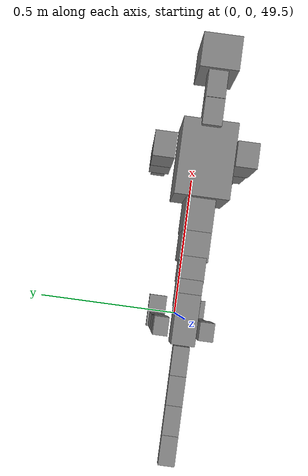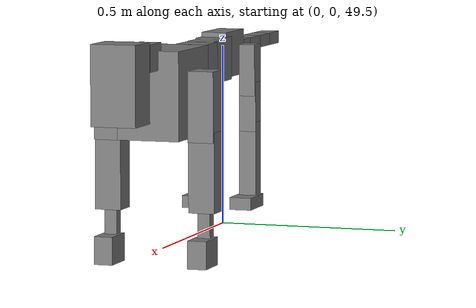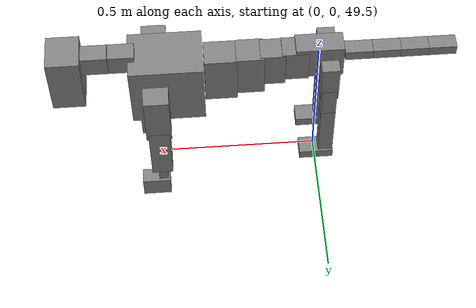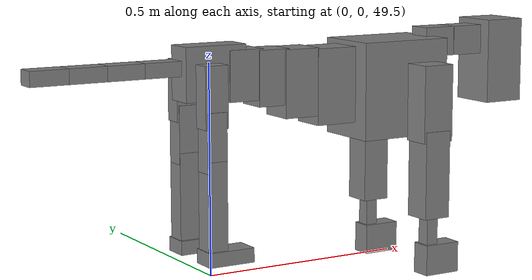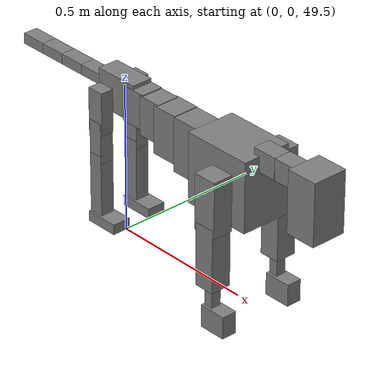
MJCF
<mujoco model="dog">

    <default>
        <joint armature="0.02" stiffness="1" damping="0.2" limited="true"/>
        <geom condim="3" friction="1 0.05 0.05" margin="0.01"/>
        <motor ctrllimited="true" ctrlrange="-1.0 1.0" forcelimited="true" gear="50"/>
    </default>

    <compiler inertiafromgeom="true" angle="radian"/>

    <option timestep="0.016" iterations="50" tolerance="1e-10" solver="Newton" jacobian="dense" cone="pyramidal"/>

    <size nconmax="20000" njmax="60000" nstack="5000000"/>
    <visual>
        <map force="0.1" zfar="30"/>
        <rgba haze="0.15 0.25 0.35 1"/>
        <quality shadowsize="2048"/>
        <global offwidth="800" offheight="800"/>
    </visual>

    <asset>
        <texture type="skybox" builtin="gradient" rgb1="0.3 0.5 0.7" rgb2="0 0 0" width="512" height="512"/>
        <texture name="texplane" type="2d" builtin="checker" rgb1=".2 .3 .4" rgb2=".1 0.15 0.2" width="512" height="512"
                 mark="cross" markrgb=".8 .8 .8"/>
        <texture name="texgeom" type="cube" builtin="flat" mark="cross" width="127" height="1278" rgb1="0.8 0.6 0.4"
                 rgb2="0.8 0.6 0.4" markrgb="1 1 1" random="0.01"/>

        <material name="matplane" reflectance="0.3" texture="texplane" texrepeat="1 1" texuniform="true"/>
        <material name="matgeom" texture="texgeom" texuniform="true" rgba="0.8 0.6 .4 1"/>
    </asset>

    <worldbody>
        <geom name="floor" pos="0 0 0" size="0 0 .25" type="plane" material="matplane" condim="3"/>

        <light directional="false" diffuse=".2 .2 .2" specular="0 0 0" pos="0 0 5" dir="0 0 -1" castshadow="false"/>
        <light mode="targetbodycom" target="torso" directional="false" diffuse=".8 .8 .8" specular="0.3 0.3 0.3"
               pos="0 0 4.0" dir="0 0 -1"/>

        <body name="root" pos="0 0 50">
            <freejoint name="root_1"/>
            <geom type="box" pos="0 0 -0.02" size="0.0774  0.0358  0.063" density="2030"/>

            <body name="spine1" pos="0.054 0 0">
                <joint name="spine1_y" axis="0 1 0" range="0 0.7" limited="true"/>
                <geom type="box" pos="0.02375 0 -0.03" size="0.04375  0.0375  0.05985" density="2030"/>

                <body name="spine2" pos="0.0612 0 0">
                    <joint name="spine2_y" axis="0 1 0" range="-0.15 0.15" limited="true"/>
                    <geom type="box" pos="0.03555  0  -0.04" size="0.04055  0.039  0.06615" density="2030"/>

                    <body name="spine3" pos="0.0730 0 0">
                        <joint name="spine3_y" axis="0 1 0" range="-0.15 0.15" limited="true"/>
                        <geom type="box" pos="0.03555  0  -0.057" size="0.04555  0.0445  0.081" density="2030"/>

                        <body name="spine4" pos="0.0780 0 0">
                            <joint name="spine4_y" axis="0 1 0" range="-0.15 0.15" limited="true"/>
                            <geom type="box" pos="0.05265  0  -0.07" size="0.05265  0.045  0.09135" density="2030"/>

                            <body name="torso" pos="0.1082 0 0">
                                <joint name="torso_y" axis="0 1 0" range="-0.15 0.15" limited="true"/>
                                <geom type="box" pos="0.11925  0  -0.085" size="0.11925  0.085  0.11745"
                                      density="2030"/>

                                <body name="neck1" pos="0.2160  0   0.0180">
                                    <joint name="neck1_y" axis="0 1 0" range="-1.2  -1" limited="true"/>
                                    <geom type="box" pos="0.0423  0  0" size="0.0423  0.03  0.036" density="2325"/>

                                    <body name="neck2" pos="0.0853  0  0">
                                        <joint name="neck2_y" axis="0 1 0" range="0.1  0" limited="true"/>
                                        <geom type="box" pos="0.0423  0  0" size="0.0423  0.03  0.036" density="2325"/>

                                        <body name="head" pos="0.0853  0  0">
                                            <joint name="head_y" axis="0 1 0" range="-0.3  -0.2" limited="true"/>
                                            <geom type="box" pos="0.0531  0  -0.055" size="0.0531  0.06  0.1044"
                                                  density="4030"/>

                                        </body>
                                    </body>
                                </body>

                                <body name="front_shoulder" pos="0.156  0   -0.0480">
                                    <joint name="front_shoulder_y" axis="0 1 0" range="-1 1.5" limited="true"/>
                                    <geom type="box" pos="0 0.13 -0.0666" size="0.0407  0.0348  0.0932" density="1158"/>
                                    <geom type="box" pos="0 -0.13 -0.0666" size="0.0407  0.0348  0.0932"
                                          density="1158"/>

                                    <body name="front_elbow" pos="0  0  -0.1331">
                                        <joint name="front_elbow_y" axis="0 1 0" range="-2 0" limited="true"/>
                                        <geom type="box" pos="0 0.13 -0.1064" size="0.0347  0.0355  0.1064"
                                              density="1081"/>
                                        <geom type="box" pos="0 -0.13 -0.1064" size="0.0347  0.0355  0.1064"
                                              density="1081"/>

                                        <body name="front_wrist" pos="0  0  -0.2127">
                                            <joint name="front_wrist_y" axis="0 1 0" range="-0.2 0" limited="true"/>
                                            <geom type="box" pos="0 0.13 -0.0413" size="0.0153  0.0170  0.0545"
                                                  density="1664"/>
                                            <geom type="box" pos="0 -0.13 -0.0413" size="0.0153  0.0170  0.0545"
                                                  density="1664"/>

                                            <body name="front_finger_end" pos="0  0  -0.0826">
                                                <joint name="front_finger_y" axis="0 1 0" range="-0.4 1"
                                                       limited="true"/>
                                                <geom type="box" pos="0.0256  0.13  -0.0223"
                                                      size="0.0469  0.0256  0.0373" density="1515"/>
                                                <geom type="box" pos="0.0256  -0.13  -0.0223"
                                                      size="0.0469  0.0256  0.0373" density="1515"/>

                                            </body>

                                        </body>
                                    </body>
                                </body>

                            </body>
                        </body>
                    </body>
                </body>
            </body>

            <body name="back_hip" pos="-0.03 0 -0.018">
                <joint name="back_hip_y" axis="0 1 0" range="-1.5 0.3" limited="true"/>
                <geom type="box" pos="0 0.07 -0.0491" size="0.0288  0.0226  0.0719" density="1154"/>
                <geom type="box" pos="0 -0.07 -0.0491" size="0.0288  0.0226  0.0719" density="1154"/>

                <body name="back_knee" pos="0  0  -0.0982">
                    <joint name="back_knee_y" axis="0 1 0" range="0 2.8" limited="true"/>
                    <geom type="box" pos="0 0.07 -0.0536" size="0.0245  0.0241  0.0691" density="1227"/>
                    <geom type="box" pos="0 -0.07 -0.0536" size="0.0245  0.0241  0.0691" density="1227"/>

                    <body name="back_ankle" pos="0  0  -0.1072">
                        <joint name="back_ankle_y" axis="0 1 0" range="-2.2 0" limited="true"/>
                        <geom type="box" pos="0 0.07 -0.1050" size="0.0243  0.0243  0.1162" density="1284"/>
                        <geom type="box" pos="0 -0.07 -0.1050" size="0.0243  0.0243  0.1162" density="1284"/>

                        <body name="back_toe_end" pos="0  0  -0.2100">
                            <joint name="back_toe_y" axis="0 1 0" range="-0.4 1" limited="true"/>
                            <geom type="box" pos="0.0313  0.07  -0.0021" size="0.0573  0.0313  0.0171" density="1515"/>
                            <geom type="box" pos="0.0313  -0.07  -0.0021" size="0.0573  0.0313  0.0171" density="1515"/>

                        </body>
                    </body>
                </body>
            </body>

            <body name="tail1" pos="-0.074 0 -0.006">
                <joint name="tail1_y" axis="0 1 0" range="-0.2 0.2" limited="true"/>
                <geom type="box" pos="-0.0536  0  0" size="0.045  0.025  0.0175" density="1587"/>

                <body name="tail2" pos="-0.09 0 0">
                    <joint name="tail2_y" axis="0 1 0" range="-0.2 0.2" limited="true"/>
                    <geom type="box" pos="-0.0536  0  0" size="0.045  0.025  0.0175" density="1587"/>

                    <body name="tail3" pos="-0.09 0 0">
                        <joint name="tail3_y" axis="0 1 0" range="-0.2 0.2" limited="true"/>
                        <geom type="box" pos="-0.0536  0  0" size="0.045  0.025  0.0175" density="1587"/>

                        <body name="tail4" pos="-0.09 0 0">
                            <joint name="tail4_y" axis="0 1 0" range="-0.2 0.2" limited="true"/>
                            <geom type="box" pos="-0.0536  0  0" size="0.045  0.025  0.0175" density="1587"/>

                        </body>
                    </body>
                </body>
            </body>
        </body>
    </worldbody>

    <actuator>
        <motor joint="spine1_y" forcerange="-150 150     "/>
        <motor joint="spine2_y" forcerange="-150 150     "/>
        <motor joint="spine3_y" forcerange="-150 150     "/>
        <motor joint="spine4_y" forcerange="-150 150     "/>
        <motor joint="torso_y" forcerange="-150 150     "/>
        <motor joint="neck1_y" forcerange="-100 100       "/>
        <motor joint="neck2_y" forcerange="-100 100       "/>
        <motor joint="head_y" forcerange="-150 150       "/>
        <motor joint="front_shoulder_y" forcerange="-199.91 132.07"/>
        <motor joint="front_elbow_y" forcerange="-198.83 159.45"/>
        <motor joint="front_wrist_y" forcerange="-62.29 73.88"/>
        <motor joint="front_finger_y" forcerange="-27.57 68.86"/>
        <motor joint="back_hip_y" forcerange="-224.20 277.07"/>
        <motor joint="back_knee_y" forcerange="-299.52 251.54"/>
        <motor joint="back_angle_y" forcerange="-124.51 163.74"/>
        <motor joint="back_toe_y" forcerange="-40.73 129.34"/>
        <motor joint="tail1_y" forcerange="-50 50     "/>
        <motor joint="tail2_y" forcerange="-50 50     "/>
        <motor joint="tail3_y" forcerange="-50 50     "/>
        <motor joint="tail4_y" forcerange="-50 50     "/>
    </actuator>
</mujoco>
